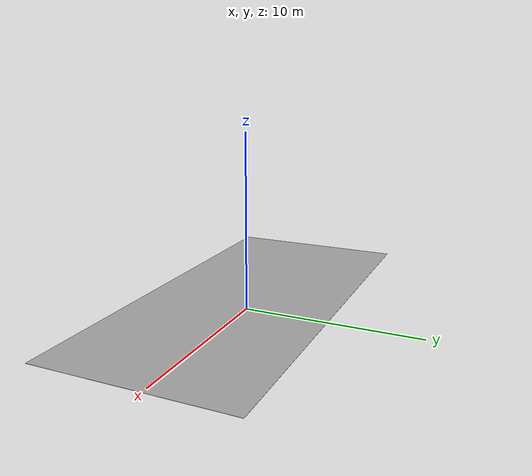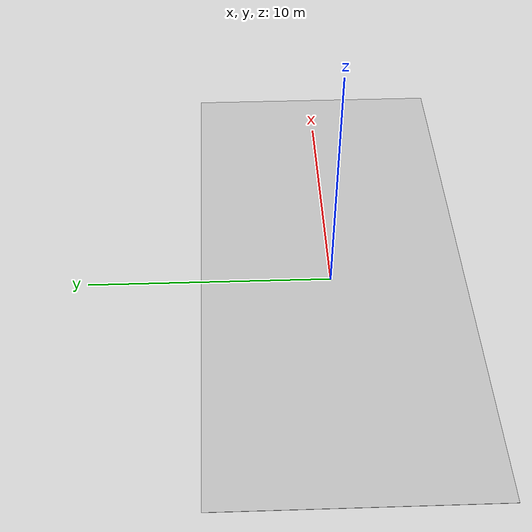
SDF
<?xml version="1.0" ?>
<sdf version="1.5">
  <model name="Carpet">
    <pose>0 0 0.75  0 0 0</pose>
    <static>true</static>
    <link name="link">
      <inertial>
        <mass>400.0</mass>
        <inertia>
          <ixx>100</ixx>
          <ixy>0</ixy>
          <ixz>0</ixz>
          <iyy>100</iyy>
          <iyz>0</iyz>
          <izz>100</izz>
        </inertia>
      </inertial>

      <collision name="collision">
        <geometry>
          <box>
              <size>22.86 10.67 0.05</size>
          </box>
        </geometry>
	<surface>
          <contact>
            <ode>
              <max_vel>0.00</max_vel>
              <min_depth>0.001</min_depth>
            </ode>
          </contact>
        </surface>
      </collision>
      <visual name="visual">
        <geometry>
          <mesh>
            <uri>model://Carpet/meshes/carpet.dae</uri>
          </mesh>
	</geometry>
      </visual>
    </link>
  </model>
</sdf>
